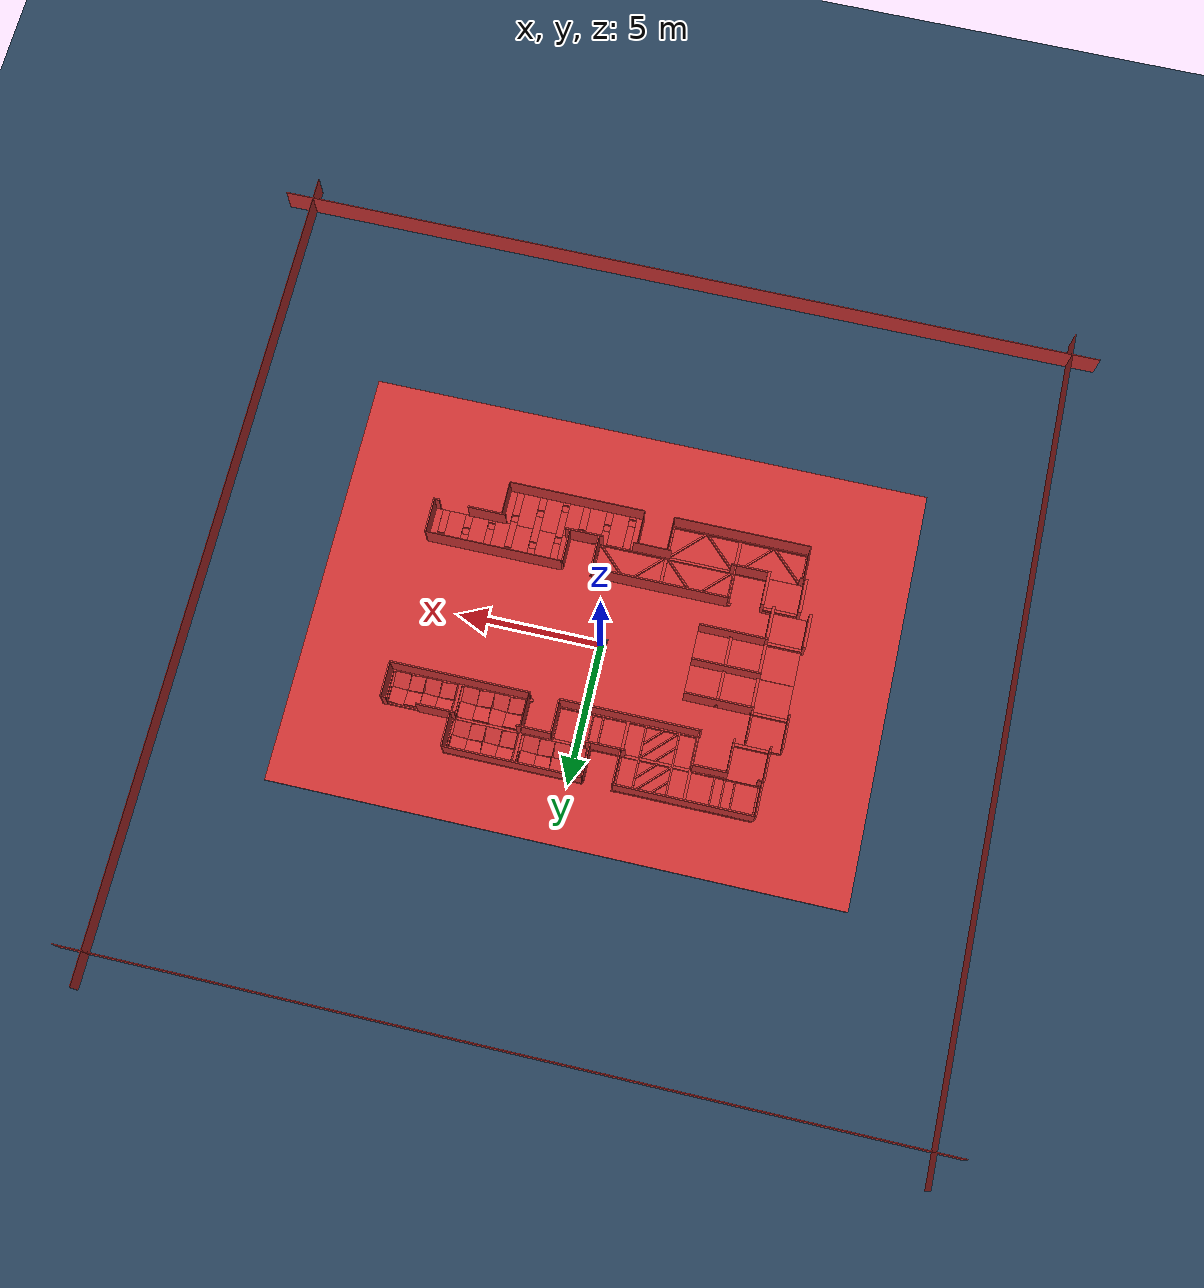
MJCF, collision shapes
<mujoco model="go2 scene">
  <include file="go2.xml" />
  <statistic center="0 0 0.1" extent="0.8" />

  <visual>
    <headlight diffuse="0.6 0.6 0.6" ambient="0.3 0.3 0.3" specular="0 0 0" />
    <rgba haze="0.15 0.25 0.35 1" />
    <global azimuth="-130" elevation="-20" />
    <map znear="0.01" zfar="100"/>
  </visual>

  <asset>
    <texture type="skybox" builtin="gradient" rgb1="0.3 0.5 0.7" rgb2="0 0 0" width="512" height="3072" />
    <texture type="2d" name="groundplane" builtin="checker" mark="edge" rgb1="0.2 0.3 0.4" rgb2="0.1 0.2 0.3" markrgb="0.8 0.8 0.8" width="300" height="300" />
    <material name="groundplane" texture="groundplane" texuniform="true" texrepeat="5 5" reflectance="0.2" />
  <hfield name="perlin_hfield" size="1.0 0.75 0.2 0.2" file="../height_field.png" /><hfield name="image_hfield" size="1.0 1.0 0.02 0.1" file="../unitree_hfield.png" /></asset>

  <worldbody>
    <light pos="0 0 1.5" dir="0 0 -1" directional="true" />
    <geom name="floor" pos="0 0.0 0.001" size="0 0 0.05" type="plane" material="groundplane" />
<geom name="phs_Cube" type="box" size="10.0 7.5 0.5" pos="0.0 -0.4 -0.484" quat="1.0 0.0 0.0 0.0" rgba="0.8 0.2 0.2 1" solref="0.02 1" solimp="0.9 0.95 0.001"/>
<geom name="phs_Cube2" type="box" size="0.125 0.6 0.1" pos="6.63 -3.01 0.025" quat="1.0 0.0 0.0 0.0" rgba="0.8 0.2 0.2 1" solref="0.02 1" solimp="0.9 0.95 0.001"/>
<geom name="phs_Cube3" type="box" size="0.29 0.6 0.1" pos="5.96 -3.01 0.025" quat="1.0 0.0 0.0 0.0" rgba="0.8 0.2 0.2 1" solref="0.02 1" solimp="0.9 0.95 0.001"/>
<geom name="phs_Cube4" type="box" size="0.29 0.6 0.1" pos="5.13 -3.01 0.025" quat="1.0 0.0 0.0 0.0" rgba="0.8 0.2 0.2 1" solref="0.02 1" solimp="0.9 0.95 0.001"/>
<geom name="phs_Cube5" type="box" size="0.25 0.6 0.1" pos="4.34 -3.01 0.025" quat="1.0 0.0 0.0 0.0" rgba="0.8 0.2 0.2 1" solref="0.02 1" solimp="0.9 0.95 0.001"/>
<geom name="phs_Cube6" type="box" size="0.125 0.6 0.1" pos="4.22 -4.21 0.025" quat="1.0 0.0 0.0 0.0" rgba="0.8 0.2 0.2 1" solref="0.02 1" solimp="0.9 0.95 0.001"/>
<geom name="phs_Cube7" type="box" size="0.29 0.6 0.1" pos="3.56 -3.01 0.025" quat="1.0 0.0 0.0 0.0" rgba="0.8 0.2 0.2 1" solref="0.02 1" solimp="0.9 0.95 0.001"/>
<geom name="phs_Cube8" type="box" size="0.29 0.6 0.1" pos="2.73 -3.01 0.025" quat="1.0 0.0 0.0 0.0" rgba="0.8 0.2 0.2 1" solref="0.02 1" solimp="0.9 0.95 0.001"/>
<geom name="phs_Cube9" type="box" size="0.29 0.6 0.1" pos="3.56 -4.21 0.025" quat="1.0 0.0 0.0 0.0" rgba="0.8 0.2 0.2 1" solref="0.02 1" solimp="0.9 0.95 0.001"/>
<geom name="phs_Cube10" type="box" size="0.29 0.6 0.1" pos="2.73 -4.21 0.025" quat="1.0 0.0 0.0 0.0" rgba="0.8 0.2 0.2 1" solref="0.02 1" solimp="0.9 0.95 0.001"/>
<geom name="phs_Cube11" type="box" size="0.29 0.6 0.1" pos="1.16 -4.21 0.025" quat="1.0 0.0 0.0 0.0" rgba="0.8 0.2 0.2 1" solref="0.02 1" solimp="0.9 0.95 0.001"/>
<geom name="phs_Cube12" type="box" size="0.29 0.6 0.1" pos="0.34 -4.21 0.025" quat="1.0 0.0 0.0 0.0" rgba="0.8 0.2 0.2 1" solref="0.02 1" solimp="0.9 0.95 0.001"/>
<geom name="phs_Cube13" type="box" size="0.25 0.6 0.1" pos="1.95 -4.21 0.025" quat="1.0 0.0 0.0 0.0" rgba="0.8 0.2 0.2 1" solref="0.02 1" solimp="0.9 0.95 0.001"/>
<geom name="phs_Cube14" type="box" size="0.15 0.6 0.1" pos="2.05 -3.01 0.025" quat="1.0 0.0 0.0 0.0" rgba="0.8 0.2 0.2 1" solref="0.02 1" solimp="0.9 0.95 0.001"/>
<geom name="phs_Cube15" type="box" size="0.125 0.426 0.1" pos="2.32 -2.84 0.025" quat="1.0 0.0 0.0 0.0" rgba="0.8 0.2 0.2 1" solref="0.02 1" solimp="0.9 0.95 0.001"/>
<geom name="phs_Cube16" type="box" size="0.125 0.475 0.1" pos="2.32 -3.99 0.025" quat="1.0 0.0 0.0 0.0" rgba="0.8 0.2 0.2 1" solref="0.02 1" solimp="0.9 0.95 0.001"/>
<geom name="phs_Cube17" type="box" size="0.125 0.05 0.1" pos="2.32 -4.77 0.0255" quat="1.0 0.0 0.0 0.0" rgba="0.8 0.2 0.2 1" solref="0.02 1" solimp="0.9 0.95 0.001"/>
<geom name="phs_Cube18" type="box" size="0.125 0.475 0.1" pos="3.144 -3.62 0.025" quat="1.0 0.0 0.0 0.0" rgba="0.8 0.2 0.2 1" solref="0.02 1" solimp="0.9 0.95 0.001"/>
<geom name="phs_Cube19" type="box" size="0.125 0.25 0.1" pos="3.144 -2.65 0.025" quat="1.0 0.0 0.0 0.0" rgba="0.8 0.2 0.2 1" solref="0.02 1" solimp="0.9 0.95 0.001"/>
<geom name="phs_Cube20" type="box" size="0.125 0.235 0.1" pos="3.144 -4.58 0.0251" quat="1.0 0.0 0.0 0.0" rgba="0.8 0.2 0.2 1" solref="0.02 1" solimp="0.9 0.95 0.001"/>
<geom name="phs_Cube21" type="box" size="0.125 0.475 0.1" pos="3.97 -3.24 0.025" quat="1.0 0.0 0.0 0.0" rgba="0.8 0.2 0.2 1" solref="0.02 1" solimp="0.9 0.95 0.001"/>
<geom name="phs_Cube22" type="box" size="0.125 0.425 0.1" pos="3.97 -4.39 0.025" quat="1.0 0.0 0.0 0.0" rgba="0.8 0.2 0.2 1" solref="0.02 1" solimp="0.9 0.95 0.001"/>
<geom name="phs_Cube23" type="box" size="0.125 0.06 0.1" pos="3.97 -2.46 0.0251" quat="1.0 0.0 0.0 0.0" rgba="0.8 0.2 0.2 1" solref="0.02 1" solimp="0.9 0.95 0.001"/>
<geom name="phs_Cube24" type="box" size="0.125 0.435 0.1" pos="4.715 -2.83 0.025" quat="1.0 0.0 0.0 0.0" rgba="0.8 0.2 0.2 1" solref="0.02 1" solimp="0.9 0.95 0.001"/>
<geom name="phs_Cube25" type="box" size="0.1265 0.42 0.1" pos="6.377 -3.19 0.025" quat="1.0 0.0 0.0 0.0" rgba="0.8 0.2 0.2 1" solref="0.02 1" solimp="0.9 0.95 0.001"/>
<geom name="phs_Cube26" type="box" size="0.1265 0.06 0.1" pos="6.377 -2.455 0.0251" quat="1.0 0.0 0.0 0.0" rgba="0.8 0.2 0.2 1" solref="0.02 1" solimp="0.9 0.95 0.001"/>
<geom name="phs_Cube27" type="box" size="0.1265 0.235 0.1" pos="5.543 -3.374 0.0251" quat="1.0 0.0 0.0 0.0" rgba="0.8 0.2 0.2 1" solref="0.02 1" solimp="0.9 0.95 0.001"/>
<geom name="phs_Cube28" type="box" size="0.1265 0.24 0.1" pos="5.543 -2.648 0.0251" quat="1.0 0.0 0.0 0.0" rgba="0.8 0.2 0.2 1" solref="0.02 1" solimp="0.9 0.95 0.001"/>
<geom name="phs_Cube29" type="box" size="0.125 0.05 0.1" pos="4.715 -3.56 0.0251" quat="1.0 0.0 0.0 0.0" rgba="0.8 0.2 0.2 1" solref="0.02 1" solimp="0.9 0.95 0.001"/>
<geom name="phs_Cube30" type="box" size="0.125 0.425 0.1" pos="1.575 -4.39 0.025" quat="1.0 0.0 0.0 0.0" rgba="0.8 0.2 0.2 1" solref="0.02 1" solimp="0.9 0.95 0.001"/>
<geom name="phs_Cube31" type="box" size="0.125 0.055 0.1" pos="1.575 -3.663 0.0251" quat="1.0 0.0 0.0 0.0" rgba="0.8 0.2 0.2 1" solref="0.02 1" solimp="0.9 0.95 0.001"/>
<geom name="phs_Cube32" type="box" size="0.125 0.235 0.1" pos="0.75 -4.581 0.0251" quat="1.0 0.0 0.0 0.0" rgba="0.8 0.2 0.2 1" solref="0.02 1" solimp="0.9 0.95 0.001"/>
<geom name="phs_Cube33" type="box" size="0.125 0.265 0.1" pos="0.75 -3.828 0.0251" quat="1.0 0.0 0.0 0.0" rgba="0.8 0.2 0.2 1" solref="0.02 1" solimp="0.9 0.95 0.001"/>
<geom name="phs_Cube34" type="box" size="0.125 0.6 0.1" pos="-0.33 -4.21 0.025" quat="1.0 0.0 0.0 0.0" rgba="0.8 0.2 0.2 1" solref="0.02 1" solimp="0.9 0.95 0.001"/>
<geom name="phs_Cube35" type="box" size="0.126 0.425 0.1" pos="-0.0775 -4.037 0.025" quat="1.0 0.0 0.0 0.0" rgba="0.8 0.2 0.2 1" solref="0.02 1" solimp="0.9 0.95 0.001"/>
<geom name="phs_Cube36" type="box" size="0.126 0.05 0.1" pos="-0.0775 -4.77 0.0251" quat="1.0 0.0 0.0 0.0" rgba="0.8 0.2 0.2 1" solref="0.02 1" solimp="0.9 0.95 0.001"/>
<geom name="phs_Cube37" type="box" size="3.75 0.044 0.1" pos="-2.61 -3.607 0.01" quat="1.0 0.0 0.0 0.0" rgba="0.8 0.2 0.2 1" solref="0.02 1" solimp="0.9 0.95 0.001"/>
<geom name="phs_Cube38" type="box" size="2.5 0.044 0.1" pos="-1.56 -2.43 0.0095" quat="1.0 0.0 0.0 0.0" rgba="0.8 0.2 0.2 1" solref="0.02 1" solimp="0.9 0.95 0.001"/>
<geom name="phs_Cube39" type="box" size="0.55 0.044 0.1" pos="0.872 -3.02 0.0095" quat="0.707107 0.0 0.0 -0.707107" rgba="0.8 0.2 0.2 1" solref="0.02 1" solimp="0.9 0.95 0.001"/>
<geom name="phs_Cube40" type="box" size="0.55 0.055 0.1" pos="-1.525 -3.02 0.0095" quat="0.707107 0.0 0.0 -0.707107" rgba="0.8 0.2 0.2 1" solref="0.02 1" solimp="0.9 0.95 0.001"/>
<geom name="phs_Cube41" type="box" size="0.55 0.055 0.1" pos="-3.93 -3.02 0.0095" quat="0.707107 0.0 0.0 -0.707107" rgba="0.8 0.2 0.2 1" solref="0.02 1" solimp="0.9 0.95 0.001"/>
<geom name="phs_Cube42" type="box" size="0.56 0.055 0.1" pos="-3.93 -4.21 0.0095" quat="0.707107 0.0 0.0 -0.707107" rgba="0.8 0.2 0.2 1" solref="0.02 1" solimp="0.9 0.95 0.001"/>
<geom name="phs_Cube43" type="box" size="0.56 0.055 0.1" pos="-6.33 -4.21 0.0095" quat="0.707107 0.0 0.0 -0.707107" rgba="0.8 0.2 0.2 1" solref="0.02 1" solimp="0.9 0.95 0.001"/>
<geom name="phs_Cube44" type="box" size="0.56 0.055 0.1" pos="-1.524 -4.21 0.0095" quat="0.707107 0.0 0.0 -0.707107" rgba="0.8 0.2 0.2 1" solref="0.02 1" solimp="0.9 0.95 0.001"/>
<geom name="phs_Cube45" type="box" size="0.85 0.03 0.1" pos="-4.53 -4.19 0.0095" quat="0.92388 0.0 0.0 0.382683" rgba="0.8 0.2 0.2 1" solref="0.02 1" solimp="0.9 0.95 0.001"/>
<geom name="phs_Cube46" type="box" size="0.85 0.03 0.1" pos="-5.73 -4.19 0.0095" quat="0.92388 0.0 0.0 -0.382683" rgba="0.8 0.2 0.2 1" solref="0.02 1" solimp="0.9 0.95 0.001"/>
<geom name="phs_Cube47" type="box" size="2.425 0.044 0.1" pos="-3.91 -4.81 0.0095" quat="1.0 0.0 0.0 0.0" rgba="0.8 0.2 0.2 1" solref="0.02 1" solimp="0.9 0.95 0.001"/>
<geom name="phs_Cube48" type="box" size="0.85 0.03 0.1" pos="-2.13 -4.19 0.0095" quat="0.92388 0.0 0.0 0.382683" rgba="0.8 0.2 0.2 1" solref="0.02 1" solimp="0.9 0.95 0.001"/>
<geom name="phs_Cube49" type="box" size="0.85 0.03 0.1" pos="-3.33 -4.19 0.0095" quat="0.92388 0.0 0.0 -0.382683" rgba="0.8 0.2 0.2 1" solref="0.02 1" solimp="0.9 0.95 0.001"/>
<geom name="phs_Cube50" type="box" size="0.6 0.6 0.1" pos="-5.76 -3.01 0.12" quat="1.0 0.0 0.0 0.0" rgba="0.8 0.2 0.2 1" solref="0.02 1" solimp="0.9 0.95 0.001"/>
<geom name="phs_Cube51" type="box" size="0.65 0.6 0.1" pos="-6.12 -1.805 0.12" quat="1.0 0.0 0.0 0.0" rgba="0.8 0.2 0.2 1" solref="0.02 1" solimp="0.9 0.95 0.001"/>
<geom name="phs_Cube52" type="box" size="1.8 0.6 0.1" pos="-4.943 -0.605 0.12" quat="1.0 0.0 0.0 0.0" rgba="0.8 0.2 0.2 1" solref="0.02 1" solimp="0.9 0.95 0.001"/>
<geom name="phs_Cube53" type="box" size="1.8 0.6 0.1" pos="-4.943 0.603 0.12" quat="1.0 0.0 0.0 0.0" rgba="0.8 0.2 0.2 1" solref="0.02 1" solimp="0.9 0.95 0.001"/>
<geom name="phs_Cube54" type="box" size="0.625 0.6 0.1" pos="-6.16 1.81 0.12" quat="1.0 0.0 0.0 0.0" rgba="0.8 0.2 0.2 1" solref="0.02 1" solimp="0.9 0.95 0.001"/>
<geom name="phs_Cube55" type="box" size="0.6 0.6 0.1" pos="-5.75 3.06 0.12" quat="1.0 0.0 0.0 0.0" rgba="0.8 0.2 0.2 1" solref="0.02 1" solimp="0.9 0.95 0.001"/>
<geom name="phs_Cube56" type="box" size="0.6 0.05 0.1" pos="-6.16 -1.265 0.27" quat="1.0 0.0 0.0 0.0" rgba="0.8 0.2 0.2 1" solref="0.02 1" solimp="0.9 0.95 0.001"/>
<geom name="phs_Cube57" type="box" size="0.6 0.05 0.1" pos="-5.76 -2.465 0.27" quat="1.0 0.0 0.0 0.0" rgba="0.8 0.2 0.2 1" solref="0.02 1" solimp="0.9 0.95 0.001"/>
<geom name="phs_Cube58" type="box" size="0.6 0.05 0.1" pos="-6.16 1.26 0.27" quat="1.0 0.0 0.0 0.0" rgba="0.8 0.2 0.2 1" solref="0.02 1" solimp="0.9 0.95 0.001"/>
<geom name="phs_Cube59" type="box" size="0.6 0.05 0.1" pos="-5.76 2.46 0.27" quat="1.0 0.0 0.0 0.0" rgba="0.8 0.2 0.2 1" solref="0.02 1" solimp="0.9 0.95 0.001"/>
<geom name="phs_Cube60" type="box" size="1.25 0.05 0.1" pos="-5.51 0.02 0.27" quat="0.707107 0.0 0.0 -0.707107" rgba="0.8 0.2 0.2 1" solref="0.02 1" solimp="0.9 0.95 0.001"/>
<geom name="phs_Cube61" type="box" size="1.25 0.05 0.1" pos="-4.31 0.02 0.27" quat="0.707107 0.0 0.0 -0.707107" rgba="0.8 0.2 0.2 1" solref="0.02 1" solimp="0.9 0.95 0.001"/>
<geom name="phs_Cube62" type="box" size="0.05 0.6 0.1" pos="-6.315 4.22 0.01" quat="1.0 0.0 0.0 0.0" rgba="0.8 0.2 0.2 1" solref="0.02 1" solimp="0.9 0.95 0.001"/>
<geom name="phs_Cube63" type="box" size="0.055 1.25 0.1" pos="-1.52 3.63 0.01" quat="1.0 0.0 0.0 0.0" rgba="0.8 0.2 0.2 1" solref="0.02 1" solimp="0.9 0.95 0.001"/>
<geom name="phs_Cube64" type="box" size="0.025 0.6 0.1" pos="-5.477 4.22 0.058" quat="1.0 0.0 0.0 0.0" rgba="0.8 0.2 0.2 1" solref="0.02 1" solimp="0.9 0.95 0.001"/>
<geom name="phs_Cube65" type="box" size="0.025 0.6 0.1" pos="-5.12 4.22 0.058" quat="1.0 0.0 0.0 0.0" rgba="0.8 0.2 0.2 1" solref="0.02 1" solimp="0.9 0.95 0.001"/>
<geom name="phs_Cube66" type="box" size="0.025 0.6 0.1" pos="-4.77 4.22 0.058" quat="1.0 0.0 0.0 0.0" rgba="0.8 0.2 0.2 1" solref="0.02 1" solimp="0.9 0.95 0.001"/>
<geom name="phs_Cube67" type="box" size="0.05 1.25 0.1" pos="-3.925 3.62 0.01" quat="1.0 0.0 0.0 0.0" rgba="0.8 0.2 0.2 1" solref="0.02 1" solimp="0.9 0.95 0.001"/>
<geom name="phs_Cube68" type="box" size="0.03 1.25 0.1" pos="-3.297 3.62 0.058" quat="1.0 0.0 0.0 0.0" rgba="0.8 0.2 0.2 1" solref="0.02 1" solimp="0.9 0.95 0.001"/>
<geom name="phs_Cube69" type="box" size="0.03 1.25 0.1" pos="-2.15 3.62 0.058" quat="1.0 0.0 0.0 0.0" rgba="0.8 0.2 0.2 1" solref="0.02 1" solimp="0.9 0.95 0.001"/>
<geom name="phs_Cube70" type="box" size="0.05 4.5 0.1" pos="-0.125 3.61 0.01" quat="0.707107 0.0 0.0 0.707107" rgba="0.8 0.2 0.2 1" solref="0.02 1" solimp="0.9 0.95 0.001"/>
<geom name="phs_Cube71" type="box" size="0.05 0.3 0.1" pos="-4.87 3.607 0.058" quat="0.707107 0.0 0.0 0.707107" rgba="0.8 0.2 0.2 1" solref="0.02 1" solimp="0.9 0.95 0.001"/>
<geom name="phs_Cube72" type="box" size="0.05 2.4 0.1" pos="-3.87 4.82 0.01" quat="0.707107 0.0 0.0 -0.707107" rgba="0.8 0.2 0.2 1" solref="0.02 1" solimp="0.9 0.95 0.001"/>
<geom name="phs_Cube73" type="box" size="0.05 0.55 0.1" pos="-5.12 4.82 0.058" quat="0.707107 0.0 0.0 -0.707107" rgba="0.8 0.2 0.2 1" solref="0.02 1" solimp="0.9 0.95 0.001"/>
<geom name="phs_Cube74" type="box" size="0.05 0.55 0.1" pos="-2.72 4.82 0.058" quat="0.707107 0.0 0.0 -0.707107" rgba="0.8 0.2 0.2 1" solref="0.02 1" solimp="0.9 0.95 0.001"/>
<geom name="phs_Cube75" type="box" size="0.05 0.55 0.1" pos="-2.72 3.61 0.058" quat="0.707107 0.0 0.0 -0.707107" rgba="0.8 0.2 0.2 1" solref="0.02 1" solimp="0.9 0.95 0.001"/>
<geom name="phs_Cube76" type="box" size="0.05 0.55 0.1" pos="-2.72 2.42 0.058" quat="0.707107 0.0 0.0 -0.707107" rgba="0.8 0.2 0.2 1" solref="0.02 1" solimp="0.9 0.95 0.001"/>
<geom name="phs_Cube77" type="box" size="0.05 2.4 0.1" pos="-1.525 2.41 0.01" quat="0.707107 0.0 0.0 0.707107" rgba="0.8 0.2 0.2 1" solref="0.02 1" solimp="0.9 0.95 0.001"/>
<geom name="phs_Cube78" type="box" size="0.05 0.55 0.1" pos="-0.32 2.42 0.058" quat="0.707107 0.0 0.0 -0.707107" rgba="0.8 0.2 0.2 1" solref="0.02 1" solimp="0.9 0.95 0.001"/>
<geom name="phs_Cube79" type="box" size="0.025 0.55 0.1" pos="-0.32 3.59 0.058" quat="0.707107 0.0 0.0 -0.707107" rgba="0.8 0.2 0.2 1" solref="0.02 1" solimp="0.9 0.95 0.001"/>
<geom name="phs_Cube80" type="box" size="0.055 0.6 0.1" pos="0.88 3.03 0.01" quat="1.0 0.0 0.0 0.0" rgba="0.8 0.2 0.2 1" solref="0.02 1" solimp="0.9 0.95 0.001"/>
<geom name="phs_Cube81" type="box" size="0.055 1.25 0.1" pos="1.95 3.59 0.01" quat="1.0 0.0 0.0 0.0" rgba="0.8 0.2 0.2 1" solref="0.02 1" solimp="0.9 0.95 0.001"/>
<geom name="phs_Cube82" type="box" size="0.055 1.25 0.1" pos="4.35 3.59 0.01" quat="1.0 0.0 0.0 0.0" rgba="0.8 0.2 0.2 1" solref="0.02 1" solimp="0.9 0.95 0.001"/>
<geom name="phs_Cube83" type="box" size="0.055 0.6 0.1" pos="6.75 2.99 0.01" quat="1.0 0.0 0.0 0.0" rgba="0.8 0.2 0.2 1" solref="0.02 1" solimp="0.9 0.95 0.001"/>
<geom name="phs_Cube84" type="box" size="0.025 1.25 0.1" pos="5.56 3.61 0.01" quat="0.707107 0.0 0.0 0.707107" rgba="0.8 0.2 0.2 1" solref="0.02 1" solimp="0.9 0.95 0.001"/>
<geom name="phs_Cube85" type="box" size="0.05 2.5 0.1" pos="4.31 2.42 0.01" quat="0.707107 0.0 0.0 0.707107" rgba="0.8 0.2 0.2 1" solref="0.02 1" solimp="0.9 0.95 0.001"/>
<geom name="phs_Cube86" type="box" size="0.025 0.8 0.1" pos="-2.72 3.01 0.058" quat="0.92388 0.0 0.0 -0.382683" rgba="0.8 0.2 0.2 1" solref="0.02 1" solimp="0.9 0.95 0.001"/>
<geom name="phs_Cube87" type="box" size="0.025 0.45 0.1" pos="-2.97 3.27 0.058" quat="0.92388 0.0 0.0 -0.382683" rgba="0.8 0.2 0.2 1" solref="0.02 1" solimp="0.9 0.95 0.001"/>
<geom name="phs_Cube88" type="box" size="0.025 0.45 0.1" pos="-2.47 2.77 0.058" quat="0.92388 0.0 0.0 -0.382683" rgba="0.8 0.2 0.2 1" solref="0.02 1" solimp="0.9 0.95 0.001"/>
<geom name="phs_Cube89" type="box" size="0.025 0.8 0.1" pos="-2.72 4.21 0.058" quat="0.92388 0.0 0.0 -0.382683" rgba="0.8 0.2 0.2 1" solref="0.02 1" solimp="0.9 0.95 0.001"/>
<geom name="phs_Cube90" type="box" size="0.025 0.45 0.1" pos="-2.97 4.47 0.058" quat="0.92388 0.0 0.0 -0.382683" rgba="0.8 0.2 0.2 1" solref="0.02 1" solimp="0.9 0.95 0.001"/>
<geom name="phs_Cube91" type="box" size="0.025 0.45 0.1" pos="-2.47 3.97 0.058" quat="0.92388 0.0 0.0 -0.382683" rgba="0.8 0.2 0.2 1" solref="0.02 1" solimp="0.9 0.95 0.001"/>
<geom name="phs_Cube92" type="box" size="0.03 0.6 0.1" pos="-0.67 3.03 0.058" quat="1.0 0.0 0.0 0.0" rgba="0.8 0.2 0.2 1" solref="0.02 1" solimp="0.9 0.95 0.001"/>
<geom name="phs_Cube93" type="box" size="0.02 0.6 0.1" pos="-0.32 3.03 0.058" quat="1.0 0.0 0.0 0.0" rgba="0.8 0.2 0.2 1" solref="0.02 1" solimp="0.9 0.95 0.001"/>
<geom name="phs_Cube94" type="box" size="0.03 0.6 0.1" pos="0.02 3.02 0.058" quat="1.0 0.0 0.0 0.0" rgba="0.8 0.2 0.2 1" solref="0.02 1" solimp="0.9 0.95 0.001"/>
<geom name="phs_Cube95" type="box" size="0.055 0.6 0.1" pos="-0.45 4.24 0.01" quat="1.0 0.0 0.0 0.0" rgba="0.8 0.2 0.2 1" solref="0.02 1" solimp="0.9 0.95 0.001"/>
<geom name="phs_Cube96" type="box" size="0.05 2.4 0.1" pos="1.975 4.81 0.01" quat="0.707107 0.0 0.0 0.707107" rgba="0.8 0.2 0.2 1" solref="0.02 1" solimp="0.9 0.95 0.001"/>
<geom name="phs_Cube97" type="box" size="0.275 0.275 0.1" pos="1.53 3.91 0.02" quat="0.990268 -0.139173 0.0 0.0" rgba="0.8 0.2 0.2 1" solref="0.02 1" solimp="0.9 0.95 0.001"/>
<geom name="phs_Cube98" type="box" size="0.275 0.275 0.1" pos="1.56 4.49 0.02" quat="0.990268 0.0 -0.139173 0.0" rgba="0.8 0.2 0.2 1" solref="0.02 1" solimp="0.9 0.95 0.001"/>
<geom name="phs_Cube99" type="box" size="0.275 0.275 0.1" pos="0.99 4.51 0.02" quat="0.990268 0.139173 0.0 0.0" rgba="0.8 0.2 0.2 1" solref="0.02 1" solimp="0.9 0.95 0.001"/>
<geom name="phs_Cube100" type="box" size="0.275 0.275 0.1" pos="0.97 3.94 0.02" quat="0.990268 0.0 0.139173 0.0" rgba="0.8 0.2 0.2 1" solref="0.02 1" solimp="0.9 0.95 0.001"/>
<geom name="phs_Cube101" type="box" size="0.275 0.275 0.1" pos="0.48 4.49 0.02" quat="0.990268 0.0 -0.139173 0.0" rgba="0.8 0.2 0.2 1" solref="0.02 1" solimp="0.9 0.95 0.001"/>
<geom name="phs_Cube102" type="box" size="0.275 0.275 0.1" pos="-0.07 4.51 0.02" quat="0.990268 0.139173 0.0 0.0" rgba="0.8 0.2 0.2 1" solref="0.02 1" solimp="0.9 0.95 0.001"/>
<geom name="phs_Cube103" type="box" size="0.275 0.275 0.1" pos="0.46 3.91 0.02" quat="0.990268 -0.139173 0.0 0.0" rgba="0.8 0.2 0.2 1" solref="0.02 1" solimp="0.9 0.95 0.001"/>
<geom name="phs_Cube104" type="box" size="0.275 0.275 0.1" pos="-0.12 3.94 0.02" quat="0.990268 0.0 0.139173 0.0" rgba="0.8 0.2 0.2 1" solref="0.02 1" solimp="0.9 0.95 0.001"/>
<geom name="phs_Cube105" type="box" size="0.275 0.275 0.1" pos="3.93 3.91 0.02" quat="0.990268 -0.139173 0.0 0.0" rgba="0.8 0.2 0.2 1" solref="0.02 1" solimp="0.9 0.95 0.001"/>
<geom name="phs_Cube106" type="box" size="0.275 0.275 0.1" pos="3.96 4.49 0.02" quat="0.990268 0.0 -0.139173 0.0" rgba="0.8 0.2 0.2 1" solref="0.02 1" solimp="0.9 0.95 0.001"/>
<geom name="phs_Cube107" type="box" size="0.275 0.275 0.1" pos="3.39 4.51 0.02" quat="0.990268 0.139173 0.0 0.0" rgba="0.8 0.2 0.2 1" solref="0.02 1" solimp="0.9 0.95 0.001"/>
<geom name="phs_Cube108" type="box" size="0.275 0.275 0.1" pos="3.37 3.94 0.02" quat="0.990268 0.0 0.139173 0.0" rgba="0.8 0.2 0.2 1" solref="0.02 1" solimp="0.9 0.95 0.001"/>
<geom name="phs_Cube109" type="box" size="0.275 0.275 0.1" pos="2.88 4.49 0.02" quat="0.990268 0.0 -0.139173 0.0" rgba="0.8 0.2 0.2 1" solref="0.02 1" solimp="0.9 0.95 0.001"/>
<geom name="phs_Cube110" type="box" size="0.275 0.275 0.1" pos="2.33 4.51 0.02" quat="0.990268 0.139173 0.0 0.0" rgba="0.8 0.2 0.2 1" solref="0.02 1" solimp="0.9 0.95 0.001"/>
<geom name="phs_Cube111" type="box" size="0.275 0.275 0.1" pos="2.86 3.91 0.02" quat="0.990268 -0.139173 0.0 0.0" rgba="0.8 0.2 0.2 1" solref="0.02 1" solimp="0.9 0.95 0.001"/>
<geom name="phs_Cube112" type="box" size="0.275 0.275 0.1" pos="2.28 3.94 0.02" quat="0.990268 0.0 0.139173 0.0" rgba="0.8 0.2 0.2 1" solref="0.02 1" solimp="0.9 0.95 0.001"/>
<geom name="phs_Cube113" type="box" size="0.275 0.275 0.1" pos="3.93 2.71 0.02" quat="0.990268 -0.139173 0.0 0.0" rgba="0.8 0.2 0.2 1" solref="0.02 1" solimp="0.9 0.95 0.001"/>
<geom name="phs_Cube114" type="box" size="0.275 0.275 0.1" pos="3.96 3.29 0.02" quat="0.990268 0.0 -0.139173 0.0" rgba="0.8 0.2 0.2 1" solref="0.02 1" solimp="0.9 0.95 0.001"/>
<geom name="phs_Cube115" type="box" size="0.275 0.275 0.1" pos="3.39 3.31 0.02" quat="0.990268 0.139173 0.0 0.0" rgba="0.8 0.2 0.2 1" solref="0.02 1" solimp="0.9 0.95 0.001"/>
<geom name="phs_Cube116" type="box" size="0.275 0.275 0.1" pos="3.37 2.74 0.02" quat="0.990268 0.0 0.139173 0.0" rgba="0.8 0.2 0.2 1" solref="0.02 1" solimp="0.9 0.95 0.001"/>
<geom name="phs_Cube117" type="box" size="0.275 0.275 0.1" pos="2.88 3.29 0.02" quat="0.990268 0.0 -0.139173 0.0" rgba="0.8 0.2 0.2 1" solref="0.02 1" solimp="0.9 0.95 0.001"/>
<geom name="phs_Cube118" type="box" size="0.275 0.275 0.1" pos="2.33 3.31 0.02" quat="0.990268 0.139173 0.0 0.0" rgba="0.8 0.2 0.2 1" solref="0.02 1" solimp="0.9 0.95 0.001"/>
<geom name="phs_Cube119" type="box" size="0.275 0.275 0.1" pos="2.86 2.71 0.02" quat="0.990268 -0.139173 0.0 0.0" rgba="0.8 0.2 0.2 1" solref="0.02 1" solimp="0.9 0.95 0.001"/>
<geom name="phs_Cube120" type="box" size="0.275 0.275 0.1" pos="2.28 2.74 0.02" quat="0.990268 0.0 0.139173 0.0" rgba="0.8 0.2 0.2 1" solref="0.02 1" solimp="0.9 0.95 0.001"/>
<geom name="phs_Cube121" type="box" size="0.275 0.275 0.1" pos="6.33 2.71 0.02" quat="0.990268 -0.139173 0.0 0.0" rgba="0.8 0.2 0.2 1" solref="0.02 1" solimp="0.9 0.95 0.001"/>
<geom name="phs_Cube122" type="box" size="0.275 0.275 0.1" pos="6.36 3.29 0.02" quat="0.990268 0.0 -0.139173 0.0" rgba="0.8 0.2 0.2 1" solref="0.02 1" solimp="0.9 0.95 0.001"/>
<geom name="phs_Cube123" type="box" size="0.275 0.275 0.1" pos="5.79 3.31 0.02" quat="0.990268 0.139173 0.0 0.0" rgba="0.8 0.2 0.2 1" solref="0.02 1" solimp="0.9 0.95 0.001"/>
<geom name="phs_Cube124" type="box" size="0.275 0.275 0.1" pos="5.77 2.74 0.02" quat="0.990268 0.0 0.139173 0.0" rgba="0.8 0.2 0.2 1" solref="0.02 1" solimp="0.9 0.95 0.001"/>
<geom name="phs_Cube125" type="box" size="0.275 0.275 0.1" pos="5.28 3.29 0.02" quat="0.990268 0.0 -0.139173 0.0" rgba="0.8 0.2 0.2 1" solref="0.02 1" solimp="0.9 0.95 0.001"/>
<geom name="phs_Cube126" type="box" size="0.275 0.275 0.1" pos="4.73 3.31 0.02" quat="0.990268 0.139173 0.0 0.0" rgba="0.8 0.2 0.2 1" solref="0.02 1" solimp="0.9 0.95 0.001"/>
<geom name="phs_Cube127" type="box" size="0.275 0.275 0.1" pos="5.26 2.71 0.02" quat="0.990268 -0.139173 0.0 0.0" rgba="0.8 0.2 0.2 1" solref="0.02 1" solimp="0.9 0.95 0.001"/>
<geom name="phs_Cube128" type="box" size="0.275 0.275 0.1" pos="4.68 2.74 0.02" quat="0.990268 0.0 0.139173 0.0" rgba="0.8 0.2 0.2 1" solref="0.02 1" solimp="0.9 0.95 0.001"/>
<geom name="phs_Cube129" type="box" size="0.85 0.03 0.1" pos="-3.27 -2.99 0.0095" quat="0.92388 0.0 0.0 0.382683" rgba="0.8 0.2 0.2 1" solref="0.02 1" solimp="0.9 0.95 0.001"/>
<geom name="phs_Cube130" type="box" size="0.85 0.03 0.1" pos="-2.18 -2.99 0.0095" quat="0.92388 0.0 0.0 -0.382683" rgba="0.8 0.2 0.2 1" solref="0.02 1" solimp="0.9 0.95 0.001"/>
<geom name="phs_Cube131" type="box" size="0.85 0.03 0.1" pos="-0.87 -2.99 0.0095" quat="0.92388 0.0 0.0 0.382683" rgba="0.8 0.2 0.2 1" solref="0.02 1" solimp="0.9 0.95 0.001"/>
<geom name="phs_Cube132" type="box" size="0.85 0.03 0.1" pos="0.22 -2.99 0.0095" quat="0.92388 0.0 0.0 -0.382683" rgba="0.8 0.2 0.2 1" solref="0.02 1" solimp="0.9 0.95 0.001"/>
<geom name="phs_Cube133" type="box" size="0.025 0.6 0.5" pos="6.77 -3.01 0.5" quat="1.0 0.0 0.0 0.0" rgba="0.8 0.2 0.2 1" solref="0.02 1" solimp="0.9 0.95 0.001"/>
<geom name="phs_Cube134" type="box" size="0.025 0.6 0.5" pos="1.92 -3.01 0.5" quat="1.0 0.0 0.0 0.0" rgba="0.8 0.2 0.2 1" solref="0.02 1" solimp="0.9 0.95 0.001"/>
<geom name="phs_Cube135" type="box" size="0.025 0.6 0.5" pos="0.89 -3.01 0.5" quat="1.0 0.0 0.0 0.0" rgba="0.8 0.2 0.2 1" solref="0.02 1" solimp="0.9 0.95 0.001"/>
<geom name="phs_Cube136" type="box" size="0.025 0.6 0.5" pos="-3.94 -3.01 0.5" quat="1.0 0.0 0.0 0.0" rgba="0.8 0.2 0.2 1" solref="0.02 1" solimp="0.9 0.95 0.001"/>
<geom name="phs_Cube137" type="box" size="0.05 0.6 0.5" pos="-5.11 -3.01 0.5" quat="1.0 0.0 0.0 0.0" rgba="0.8 0.2 0.2 1" solref="0.02 1" solimp="0.9 0.95 0.001"/>
<geom name="phs_Cube138" type="box" size="0.05 0.6 0.5" pos="-6.4 -3.01 0.5" quat="1.0 0.0 0.0 0.0" rgba="0.8 0.2 0.2 1" solref="0.02 1" solimp="0.9 0.95 0.001"/>
<geom name="phs_Cube139" type="box" size="0.01 0.6 0.5" pos="-6.33 -4.21 0.5" quat="1.0 0.0 0.0 0.0" rgba="0.8 0.2 0.2 1" solref="0.02 1" solimp="0.9 0.95 0.001"/>
<geom name="phs_Cube140" type="box" size="0.01 0.6 0.5" pos="-1.51 -4.21 0.5" quat="1.0 0.0 0.0 0.0" rgba="0.8 0.2 0.2 1" solref="0.02 1" solimp="0.9 0.95 0.001"/>
<geom name="phs_Cube141" type="box" size="0.01 0.6 0.5" pos="-0.46 -4.21 0.5" quat="1.0 0.0 0.0 0.0" rgba="0.8 0.2 0.2 1" solref="0.02 1" solimp="0.9 0.95 0.001"/>
<geom name="phs_Cube142" type="box" size="0.01 0.6 0.5" pos="4.35 -4.21 0.5" quat="1.0 0.0 0.0 0.0" rgba="0.8 0.2 0.2 1" solref="0.02 1" solimp="0.9 0.95 0.001"/>
<geom name="phs_Cube143" type="box" size="0.025 0.675 0.5" pos="1.41 -3.59 0.5" quat="0.707107 0.0 0.0 -0.707107" rgba="0.8 0.2 0.2 1" solref="0.02 1" solimp="0.9 0.95 0.001"/>
<geom name="phs_Cube144" type="box" size="0.01 0.675 0.5" pos="-0.99 -3.61 0.5" quat="0.707107 0.0 0.0 -0.707107" rgba="0.8 0.2 0.2 1" solref="0.02 1" solimp="0.9 0.95 0.001"/>
<geom name="phs_Cube145" type="box" size="0.025 0.69 0.5" pos="-4.47 -3.59 0.5" quat="0.707107 0.0 0.0 -0.707107" rgba="0.8 0.2 0.2 1" solref="0.02 1" solimp="0.9 0.95 0.001"/>
<geom name="phs_Cube146" type="box" size="0.01 0.075 0.5" pos="-6.25 -3.62 0.5" quat="0.707107 0.0 0.0 -0.707107" rgba="0.8 0.2 0.2 1" solref="0.02 1" solimp="0.9 0.95 0.001"/>
<geom name="phs_Cube147" type="box" size="0.01 2.4 0.5" pos="-3.92 -4.82 0.5" quat="0.707107 0.0 0.0 -0.707107" rgba="0.8 0.2 0.2 1" solref="0.02 1" solimp="0.9 0.95 0.001"/>
<geom name="phs_Cube148" type="box" size="0.01 2.4 0.5" pos="1.95 -4.82 0.5" quat="0.707107 0.0 0.0 -0.707107" rgba="0.8 0.2 0.2 1" solref="0.02 1" solimp="0.9 0.95 0.001"/>
<geom name="phs_Cube149" type="box" size="0.025 2.4 0.5" pos="-1.51 -2.39 0.5" quat="0.707107 0.0 0.0 -0.707107" rgba="0.8 0.2 0.2 1" solref="0.02 1" solimp="0.9 0.95 0.001"/>
<geom name="phs_Cube150" type="box" size="0.01 2.4 0.5" pos="4.36 -2.4 0.5" quat="0.707107 0.0 0.0 -0.707107" rgba="0.8 0.2 0.2 1" solref="0.02 1" solimp="0.9 0.95 0.001"/>
<geom name="phs_Cube151" type="box" size="0.025 0.67 0.5" pos="4.88 -3.61 0.5" quat="0.707107 0.0 0.0 -0.707107" rgba="0.8 0.2 0.2 1" solref="0.02 1" solimp="0.9 0.95 0.001"/>
<geom name="phs_Cube152" type="box" size="0.025 0.1 0.5" pos="6.68 -3.63 0.5" quat="0.707107 0.0 0.0 -0.707107" rgba="0.8 0.2 0.2 1" solref="0.02 1" solimp="0.9 0.95 0.001"/>
<geom name="phs_Cube153" type="box" size="0.05 0.6 0.5" pos="-6.79 -1.81 0.5" quat="1.0 0.0 0.0 0.0" rgba="0.8 0.2 0.2 1" solref="0.02 1" solimp="0.9 0.95 0.001"/>
<geom name="phs_Cube154" type="box" size="0.05 0.6 0.5" pos="-5.5 -1.81 0.5" quat="1.0 0.0 0.0 0.0" rgba="0.8 0.2 0.2 1" solref="0.02 1" solimp="0.9 0.95 0.001"/>
<geom name="phs_Cube155" type="box" size="0.025 0.6 0.5" pos="-6.77 1.79 0.5" quat="1.0 0.0 0.0 0.0" rgba="0.8 0.2 0.2 1" solref="0.02 1" solimp="0.9 0.95 0.001"/>
<geom name="phs_Cube156" type="box" size="0.025 0.6 0.5" pos="-5.53 1.79 0.5" quat="1.0 0.0 0.0 0.0" rgba="0.8 0.2 0.2 1" solref="0.02 1" solimp="0.9 0.95 0.001"/>
<geom name="phs_Cube157" type="box" size="0.025 0.6 0.5" pos="-6.38 3.01 0.5" quat="1.0 0.0 0.0 0.0" rgba="0.8 0.2 0.2 1" solref="0.02 1" solimp="0.9 0.95 0.001"/>
<geom name="phs_Cube158" type="box" size="0.025 0.6 0.5" pos="-5.14 3.0 0.5" quat="1.0 0.0 0.0 0.0" rgba="0.8 0.2 0.2 1" solref="0.02 1" solimp="0.9 0.95 0.001"/>
<geom name="phs_Cube159" type="box" size="0.025 1.2 0.5" pos="-4.35 -1.24 0.5" quat="0.707107 0.0 0.0 -0.707107" rgba="0.8 0.2 0.2 1" solref="0.02 1" solimp="0.9 0.95 0.001"/>
<geom name="phs_Cube160" type="box" size="0.025 1.2 0.5" pos="-4.35 0.0 0.5" quat="0.707107 0.0 0.0 -0.707107" rgba="0.8 0.2 0.2 1" solref="0.02 1" solimp="0.9 0.95 0.001"/>
<geom name="phs_Cube161" type="box" size="0.025 1.2 0.5" pos="-4.35 1.22 0.5" quat="0.707107 0.0 0.0 -0.707107" rgba="0.8 0.2 0.2 1" solref="0.02 1" solimp="0.9 0.95 0.001"/>
<geom name="phs_Cube162" type="box" size="0.025 0.6 0.5" pos="-1.5 4.21 0.5" quat="1.0 0.0 0.0 0.0" rgba="0.8 0.2 0.2 1" solref="0.02 1" solimp="0.9 0.95 0.001"/>
<geom name="phs_Cube163" type="box" size="0.025 0.6 0.5" pos="-0.46 4.21 0.5" quat="1.0 0.0 0.0 0.0" rgba="0.8 0.2 0.2 1" solref="0.02 1" solimp="0.9 0.95 0.001"/>
<geom name="phs_Cube164" type="box" size="0.025 0.6 0.5" pos="4.36 4.21 0.5" quat="1.0 0.0 0.0 0.0" rgba="0.8 0.2 0.2 1" solref="0.02 1" solimp="0.9 0.95 0.001"/>
<geom name="phs_Cube165" type="box" size="0.025 0.6 0.5" pos="6.77 3.02 0.5" quat="1.0 0.0 0.0 0.0" rgba="0.8 0.2 0.2 1" solref="0.02 1" solimp="0.9 0.95 0.001"/>
<geom name="phs_Cube166" type="box" size="0.01 0.6 0.5" pos="1.93 3.02 0.5" quat="1.0 0.0 0.0 0.0" rgba="0.8 0.2 0.2 1" solref="0.02 1" solimp="0.9 0.95 0.001"/>
<geom name="phs_Cube167" type="box" size="0.025 0.6 0.5" pos="0.89 3.02 0.5" quat="1.0 0.0 0.0 0.0" rgba="0.8 0.2 0.2 1" solref="0.02 1" solimp="0.9 0.95 0.001"/>
<geom name="phs_Cube168" type="box" size="0.025 0.6 0.5" pos="-3.93 3.02 0.5" quat="1.0 0.0 0.0 0.0" rgba="0.8 0.2 0.2 1" solref="0.02 1" solimp="0.9 0.95 0.001"/>
<geom name="phs_Cube169" type="box" size="0.025 0.625 0.520833" pos="-4.54 3.59 0.5" quat="0.707107 0.0 0.0 -0.707107" rgba="0.8 0.2 0.2 1" solref="0.02 1" solimp="0.9 0.95 0.001"/>
<geom name="phs_Cube170" type="box" size="0.025 0.675 0.5625" pos="-0.99 3.62 0.5" quat="0.707107 0.0 0.0 -0.707107" rgba="0.8 0.2 0.2 1" solref="0.02 1" solimp="0.9 0.95 0.001"/>
<geom name="phs_Cube171" type="box" size="0.025 0.6 0.5" pos="1.49 3.59 0.5" quat="0.707107 0.0 0.0 -0.707107" rgba="0.8 0.2 0.2 1" solref="0.02 1" solimp="0.9 0.95 0.001"/>
<geom name="phs_Cube172" type="box" size="0.025 0.675 0.5625" pos="4.87 3.63 0.5" quat="0.707107 0.0 0.0 -0.707107" rgba="0.8 0.2 0.2 1" solref="0.02 1" solimp="0.9 0.95 0.001"/>
<geom name="phs_Cube173" type="box" size="0.025 0.075 0.5625" pos="6.67 3.63 0.5" quat="0.707107 0.0 0.0 -0.707107" rgba="0.8 0.2 0.2 1" solref="0.02 1" solimp="0.9 0.95 0.001"/>
<geom name="phs_Cube174" type="box" size="0.025 0.6 0.5" pos="-6.35 4.21 0.5" quat="1.0 0.0 0.0 0.0" rgba="0.8 0.2 0.2 1" solref="0.02 1" solimp="0.9 0.95 0.001"/>
<geom name="phs_Cube175" type="box" size="0.015 0.075 0.5" pos="-6.25 3.62 0.5" quat="0.707107 0.0 0.0 -0.707107" rgba="0.8 0.2 0.2 1" solref="0.02 1" solimp="0.9 0.95 0.001"/>
<geom name="phs_Cube176" type="box" size="0.025 2.4 0.520833" pos="-3.92 4.83 0.5" quat="0.707107 0.0 0.0 -0.707107" rgba="0.8 0.2 0.2 1" solref="0.02 1" solimp="0.9 0.95 0.001"/>
<geom name="phs_Cube177" type="box" size="0.025 2.4 0.520833" pos="1.94 4.83 0.5" quat="0.707107 0.0 0.0 -0.707107" rgba="0.8 0.2 0.2 1" solref="0.02 1" solimp="0.9 0.95 0.001"/>
<geom name="phs_Cube178" type="box" size="0.025 2.45 0.520833" pos="4.34 2.39 0.5" quat="0.707107 0.0 0.0 -0.707107" rgba="0.8 0.2 0.2 1" solref="0.02 1" solimp="0.9 0.95 0.001"/>
<geom name="phs_Cube179" type="box" size="0.025 2.45 0.520833" pos="-1.56 2.39 0.5" quat="0.707107 0.0 0.0 -0.707107" rgba="0.8 0.2 0.2 1" solref="0.02 1" solimp="0.9 0.95 0.001"/>
<geom name="phs_Cube180" type="box" size="0.01 15.0 0.5" pos="0.0 -14.0 0.5" quat="0.707107 0.0 0.0 -0.707107" rgba="0.8 0.2 0.2 1" solref="0.02 1" solimp="0.9 0.95 0.001"/>
<geom name="phs_Cube181" type="box" size="0.01 15.0 0.5" pos="0.0 14.0 0.5" quat="0.707107 0.0 0.0 -0.707107" rgba="0.8 0.2 0.2 1" solref="0.02 1" solimp="0.9 0.95 0.001"/>
<geom name="phs_Cube182" type="box" size="0.01 15.0 0.5" pos="14.0 0.2 0.5" quat="1.0 0.0 0.0 0.0" rgba="0.8 0.2 0.2 1" solref="0.02 1" solimp="0.9 0.95 0.001"/>
<geom name="phs_Cube183" type="box" size="0.01 15.0 0.5" pos="-14.0 0.2 0.5" quat="1.0 0.0 0.0 0.0" rgba="0.8 0.2 0.2 1" solref="0.02 1" solimp="0.9 0.95 0.001"/>
    </worldbody>
</mujoco>

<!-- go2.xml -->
<mujoco model="go2">
  <compiler angle="radian" meshdir="assets" autolimits="true" />

  <option cone="elliptic" impratio="100" />

  <default>
    <default class="go2">
      <geom friction="0.4" margin="0.001" condim="1"/>
      <joint axis="0 1 0" damping="0.1" armature="0.01" frictionloss="0.2"/>
      <motor ctrlrange="-23.7 23.7"/>
      <default class="abduction">
        <joint axis="1 0 0" range="-1.0472 1.0472"/>
      </default>
      <default class="hip">
        <default class="front_hip">
          <joint range="-1.5708 3.4907"/>
        </default>
        <default class="back_hip">
          <joint range="-0.5236 4.5379"/>
        </default>
      </default>
      <default class="knee">
        <joint range="-2.7227 -0.83776"/>
        <motor ctrlrange="-45.43 45.43"/>
      </default>
      <default class="visual">
        <geom type="mesh" contype="0" conaffinity="0" group="2"/>
      </default>
      <default class="collision">
        <geom group="3"/>
        <default class="foot">
          <geom size="0.022" pos="-0.002 0 -0.213" priority="1" condim="6"
            friction="0.4 0.02 0.01"/>
        </default>
      </default>
    </default>
  </default>

  <asset>
    <material name="metal" rgba=".9 .95 .95 1" />
    <material name="black" rgba="0 0 0 1" />
    <material name="white" rgba="1 1 1 1" />
    <material name="gray" rgba="0.671705 0.692426 0.774270 1" />

    <mesh file="base_0.obj" />
    <mesh file="base_1.obj" />
    <mesh file="base_2.obj" />
    <mesh file="base_3.obj" />
    <mesh file="base_4.obj" />
    <mesh file="hip_0.obj" />
    <mesh file="hip_1.obj" />
    <mesh file="thigh_0.obj" />
    <mesh file="thigh_1.obj" />
    <mesh file="thigh_mirror_0.obj" />
    <mesh file="thigh_mirror_1.obj" />
    <mesh file="calf_0.obj" />
    <mesh file="calf_1.obj" />
    <mesh file="calf_mirror_0.obj" />
    <mesh file="calf_mirror_1.obj" />
    <mesh file="foot.obj" />
  </asset>

  <worldbody>
    <body name="base_link" pos="0 0 0.445" childclass="go2">
      <inertial pos="0.021112 0 -0.005366" quat="-0.000543471 0.713435 -0.00173769 0.700719"
        mass="6.921"
        diaginertia="0.107027 0.0980771 0.0244531" />
      <freejoint />
      <geom mesh="base_0" material="black" class="visual" />
      <geom mesh="base_1" material="black" class="visual" />
      <geom mesh="base_2" material="black" class="visual" />
      <geom mesh="base_3" material="white" class="visual" />
      <geom mesh="base_4" material="gray" class="visual" />
      <geom size="0.1881 0.04675 0.057" type="box" class="collision" />
      <geom size="0.05 0.045" pos="0.285 0 0.01" type="cylinder" class="collision" />
      <geom size="0.047" pos="0.293 0 -0.06" class="collision" />
      <site name="imu" pos="-0.02557 0 0.04232" />

      <body name="FL_hip" pos="0.1934 0.0465 0">
        <inertial pos="-0.0054 0.00194 -0.000105" quat="0.497014 0.499245 0.505462 0.498237"
          mass="0.678"
          diaginertia="0.00088403 0.000596003 0.000479967" />
        <joint name="FL_hip_joint" class="abduction" />
        <geom mesh="hip_0" material="metal" class="visual" />
        <geom mesh="hip_1" material="gray" class="visual" />
        <geom size="0.046 0.02" pos="0 0.08 0" quat="1 1 0 0" type="cylinder" class="collision" />
        <body name="FL_thigh" pos="0 0.0955 0">
          <inertial pos="-0.00374 -0.0223 -0.0327" quat="0.829533 0.0847635 -0.0200632 0.551623"
            mass="1.152"
            diaginertia="0.00594973 0.00584149 0.000878787" />
          <joint name="FL_thigh_joint" class="front_hip" />
          <geom mesh="thigh_0" material="metal" class="visual" />
          <geom mesh="thigh_1" material="gray" class="visual" />
          <geom size="0.1065 0.01225 0.017" pos="0 0 -0.1065" quat="0.707107 0 0.707107 0"
            type="box" class="collision" />
          <body name="FL_calf" pos="0 0 -0.213">
            <inertial pos="0.00629595 -0.000622121 -0.141417"
              quat="0.710672 0.00154099 -0.00450087 0.703508"
              mass="0.241352" diaginertia="0.0014901 0.00146356 5.31397e-05" />
            <joint name="FL_calf_joint" class="knee" />
            <geom mesh="calf_0" material="gray" class="visual" />
            <geom mesh="calf_1" material="black" class="visual" />
            <geom size="0.012 0.06" pos="0.008 0 -0.06" quat="0.994493 0 -0.104807 0"
              type="cylinder" class="collision" />
            <geom size="0.011 0.0325" pos="0.02 0 -0.148" quat="0.999688 0 0.0249974 0"
              type="cylinder" class="collision" />
            <geom pos="0 0 -0.213" mesh="foot" class="visual" material="black" />
            <geom name="FL" class="foot" />
            <body name="FL_foot" pos="0 0 -0.213" />
          </body>
        </body>
      </body>
      <body name="FR_hip" pos="0.1934 -0.0465 0">
        <inertial pos="-0.0054 -0.00194 -0.000105" quat="0.498237 0.505462 0.499245 0.497014"
          mass="0.678"
          diaginertia="0.00088403 0.000596003 0.000479967" />
        <joint name="FR_hip_joint" class="abduction" />
        <geom mesh="hip_0" material="metal" class="visual" quat="4.63268e-05 1 0 0" />
        <geom mesh="hip_1" material="gray" class="visual" quat="4.63268e-05 1 0 0" />
        <geom size="0.046 0.02" pos="0 -0.08 0" quat="0.707107 0.707107 0 0" type="cylinder"
          class="collision" />
        <body name="FR_thigh" pos="0 -0.0955 0">
          <inertial pos="-0.00374 0.0223 -0.0327" quat="0.551623 -0.0200632 0.0847635 0.829533"
            mass="1.152"
            diaginertia="0.00594973 0.00584149 0.000878787" />
          <joint name="FR_thigh_joint" class="front_hip" />
          <geom mesh="thigh_mirror_0" material="metal" class="visual" />
          <geom mesh="thigh_mirror_1" material="gray" class="visual" />
          <geom size="0.1065 0.01225 0.017" pos="0 0 -0.1065" quat="0.707107 0 0.707107 0"
            type="box" class="collision" />
          <body name="FR_calf" pos="0 0 -0.213">
            <inertial pos="0.00629595 0.000622121 -0.141417"
              quat="0.703508 -0.00450087 0.00154099 0.710672"
              mass="0.241352" diaginertia="0.0014901 0.00146356 5.31397e-05" />
            <joint name="FR_calf_joint" class="knee" />
            <geom mesh="calf_mirror_0" material="gray" class="visual" />
            <geom mesh="calf_mirror_1" material="black" class="visual" />
            <geom size="0.013 0.06" pos="0.01 0 -0.06" quat="0.995004 0 -0.0998334 0"
              type="cylinder" class="collision" />
            <geom size="0.011 0.0325" pos="0.02 0 -0.148" quat="0.999688 0 0.0249974 0"
              type="cylinder" class="collision" />
            <geom pos="0 0 -0.213" mesh="foot" class="visual" material="black" />
            <geom name="FR" class="foot" />
            <body name="FR_foot" pos="0 0 -0.213" />
          </body>
        </body>
      </body>
      <body name="RL_hip" pos="-0.1934 0.0465 0">
        <inertial pos="0.0054 0.00194 -0.000105" quat="0.505462 0.498237 0.497014 0.499245"
          mass="0.678"
          diaginertia="0.00088403 0.000596003 0.000479967" />
        <joint name="RL_hip_joint" class="abduction" />
        <geom mesh="hip_0" material="metal" class="visual" quat="4.63268e-05 0 1 0" />
        <geom mesh="hip_1" material="gray" class="visual" quat="4.63268e-05 0 1 0" />
        <geom size="0.046 0.02" pos="0 0.08 0" quat="0.707107 0.707107 0 0" type="cylinder"
          class="collision" />
        <body name="RL_thigh" pos="0 0.0955 0">
          <inertial pos="-0.00374 -0.0223 -0.0327" quat="0.829533 0.0847635 -0.0200632 0.551623"
            mass="1.152"
            diaginertia="0.00594973 0.00584149 0.000878787" />
          <joint name="RL_thigh_joint" class="back_hip" />
          <geom mesh="thigh_0" material="metal" class="visual" />
          <geom mesh="thigh_1" material="gray" class="visual" />
          <geom size="0.1065 0.01225 0.017" pos="0 0 -0.1065" quat="0.707107 0 0.707107 0"
            type="box" class="collision" />
          <body name="RL_calf" pos="0 0 -0.213">
            <inertial pos="0.00629595 -0.000622121 -0.141417"
              quat="0.710672 0.00154099 -0.00450087 0.703508"
              mass="0.241352" diaginertia="0.0014901 0.00146356 5.31397e-05" />
            <joint name="RL_calf_joint" class="knee" />
            <geom mesh="calf_0" material="gray" class="visual" />
            <geom mesh="calf_1" material="black" class="visual" />
            <geom size="0.013 0.06" pos="0.01 0 -0.06" quat="0.995004 0 -0.0998334 0"
              type="cylinder" class="collision" />
            <geom size="0.011 0.0325" pos="0.02 0 -0.148" quat="0.999688 0 0.0249974 0"
              type="cylinder" class="collision" />
            <geom pos="0 0 -0.213" mesh="foot" class="visual" material="black" />
            <geom name="RL" class="foot" />
            <body name="RL_foot" pos="0 0 -0.213" />
          </body>
        </body>
      </body>
      <body name="RR_hip" pos="-0.1934 -0.0465 0">
        <inertial pos="0.0054 -0.00194 -0.000105" quat="0.499245 0.497014 0.498237 0.505462"
          mass="0.678"
          diaginertia="0.00088403 0.000596003 0.000479967" />
        <joint name="RR_hip_joint" class="abduction" />
        <geom mesh="hip_0" material="metal" class="visual"
          quat="2.14617e-09 4.63268e-05 4.63268e-05 -1" />
        <geom mesh="hip_1" material="gray" class="visual"
          quat="2.14617e-09 4.63268e-05 4.63268e-05 -1" />
        <geom size="0.046 0.02" pos="0 -0.08 0" quat="0.707107 0.707107 0 0" type="cylinder"
          class="collision" />
        <body name="RR_thigh" pos="0 -0.0955 0">
          <inertial pos="-0.00374 0.0223 -0.0327" quat="0.551623 -0.0200632 0.0847635 0.829533"
            mass="1.152"
            diaginertia="0.00594973 0.00584149 0.000878787" />
          <joint name="RR_thigh_joint" class="back_hip" />
          <geom mesh="thigh_mirror_0" material="metal" class="visual" />
          <geom mesh="thigh_mirror_1" material="gray" class="visual" />
          <geom size="0.1065 0.01225 0.017" pos="0 0 -0.1065" quat="0.707107 0 0.707107 0"
            type="box" class="collision" />
          <body name="RR_calf" pos="0 0 -0.213">
            <inertial pos="0.00629595 0.000622121 -0.141417"
              quat="0.703508 -0.00450087 0.00154099 0.710672"
              mass="0.241352" diaginertia="0.0014901 0.00146356 5.31397e-05" />
            <joint name="RR_calf_joint" class="knee" />
            <geom mesh="calf_mirror_0" material="gray" class="visual" />
            <geom mesh="calf_mirror_1" material="black" class="visual" />
            <geom size="0.013 0.06" pos="0.01 0 -0.06" quat="0.995004 0 -0.0998334 0"
              type="cylinder" class="collision" />
            <geom size="0.011 0.0325" pos="0.02 0 -0.148" quat="0.999688 0 0.0249974 0"
              type="cylinder" class="collision" />
            <geom pos="0 0 -0.213" mesh="foot" class="visual" material="black" />
            <geom name="RR" class="foot" />
            <body name="RR_foot" pos="0 0 -0.213" />
          </body>
        </body>
      </body>
    </body>
  </worldbody>

  <actuator>
    <motor class="abduction" name="FR_hip" joint="FR_hip_joint" />
    <motor class="hip" name="FR_thigh" joint="FR_thigh_joint" />
    <motor class="knee" name="FR_calf" joint="FR_calf_joint" />
    <motor class="abduction" name="FL_hip" joint="FL_hip_joint" />
    <motor class="hip" name="FL_thigh" joint="FL_thigh_joint" />
    <motor class="knee" name="FL_calf" joint="FL_calf_joint" />
    <motor class="abduction" name="RR_hip" joint="RR_hip_joint" />
    <motor class="hip" name="RR_thigh" joint="RR_thigh_joint" />
    <motor class="knee" name="RR_calf" joint="RR_calf_joint" />
    <motor class="abduction" name="RL_hip" joint="RL_hip_joint" />
    <motor class="hip" name="RL_thigh" joint="RL_thigh_joint" />
    <motor class="knee" name="RL_calf" joint="RL_calf_joint" />
  </actuator>

  <sensor>
    <jointpos name="FR_hip_pos" joint="FR_hip_joint" />
    <jointpos name="FR_thigh_pos" joint="FR_thigh_joint" />
    <jointpos name="FR_calf_pos" joint="FR_calf_joint" />
    <jointpos name="FL_hip_pos" joint="FL_hip_joint" />
    <jointpos name="FL_thigh_pos" joint="FL_thigh_joint" />
    <jointpos name="FL_calf_pos" joint="FL_calf_joint" />
    <jointpos name="RR_hip_pos" joint="RR_hip_joint" />
    <jointpos name="RR_thigh_pos" joint="RR_thigh_joint" />
    <jointpos name="RR_calf_pos" joint="RR_calf_joint" />
    <jointpos name="RL_hip_pos" joint="RL_hip_joint" />
    <jointpos name="RL_thigh_pos" joint="RL_thigh_joint" />
    <jointpos name="RL_calf_pos" joint="RL_calf_joint" />

    <jointvel name="FR_hip_vel" joint="FR_hip_joint" />
    <jointvel name="FR_thigh_vel" joint="FR_thigh_joint" />
    <jointvel name="FR_calf_vel" joint="FR_calf_joint" />
    <jointvel name="FL_hip_vel" joint="FL_hip_joint" />
    <jointvel name="FL_thigh_vel" joint="FL_thigh_joint" />
    <jointvel name="FL_calf_vel" joint="FL_calf_joint" />
    <jointvel name="RR_hip_vel" joint="RR_hip_joint" />
    <jointvel name="RR_thigh_vel" joint="RR_thigh_joint" />
    <jointvel name="RR_calf_vel" joint="RR_calf_joint" />
    <jointvel name="RL_hip_vel" joint="RL_hip_joint" />
    <jointvel name="RL_thigh_vel" joint="RL_thigh_joint" />
    <jointvel name="RL_calf_vel" joint="RL_calf_joint" />

    <jointactuatorfrc name="FR_hip_torque" joint="FR_hip_joint" noise="0.01" />
    <jointactuatorfrc name="FR_thigh_torque" joint="FR_thigh_joint" noise="0.01" />
    <jointactuatorfrc name="FR_calf_torque" joint="FR_calf_joint" noise="0.01" />
    <jointactuatorfrc name="FL_hip_torque" joint="FL_hip_joint" noise="0.01" />
    <jointactuatorfrc name="FL_thigh_torque" joint="FL_thigh_joint" noise="0.01" />
    <jointactuatorfrc name="FL_calf_torque" joint="FL_calf_joint" noise="0.01" />
    <jointactuatorfrc name="RR_hip_torque" joint="RR_hip_joint" noise="0.01" />
    <jointactuatorfrc name="RR_thigh_torque" joint="RR_thigh_joint" noise="0.01" />
    <jointactuatorfrc name="RR_calf_torque" joint="RR_calf_joint" noise="0.01" />
    <jointactuatorfrc name="RL_hip_torque" joint="RL_hip_joint" noise="0.01" />
    <jointactuatorfrc name="RL_thigh_torque" joint="RL_thigh_joint" noise="0.01" />
    <jointactuatorfrc name="RL_calf_torque" joint="RL_calf_joint" noise="0.01" />

    <framequat name="imu_quat" objtype="site" objname="imu" />
    <gyro name="imu_gyro" site="imu" />
    <accelerometer name="imu_acc" site="imu" />

    <framepos name="frame_pos" objtype="site" objname="imu" />
    <framelinvel name="frame_vel" objtype="site" objname="imu" />
  </sensor>

  <keyframe>
    <key name="home" qpos="0 0 0.27 1 0 0 0 0 0.9 -1.8 0 0.9 -1.8 0 0.9 -1.8 0 0.9 -1.8"
      ctrl="0 0.9 -1.8 0 0.9 -1.8 0 0.9 -1.8 0 0.9 -1.8" />
  </keyframe>
</mujoco>
